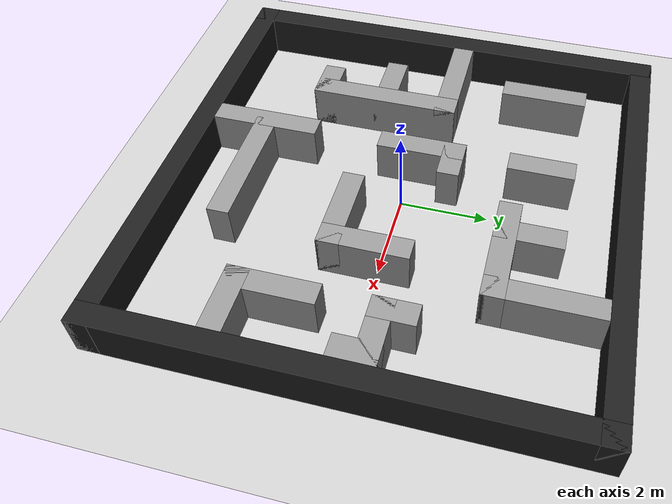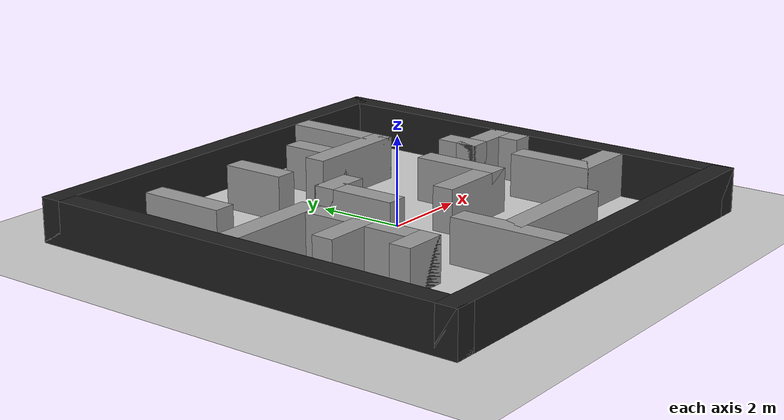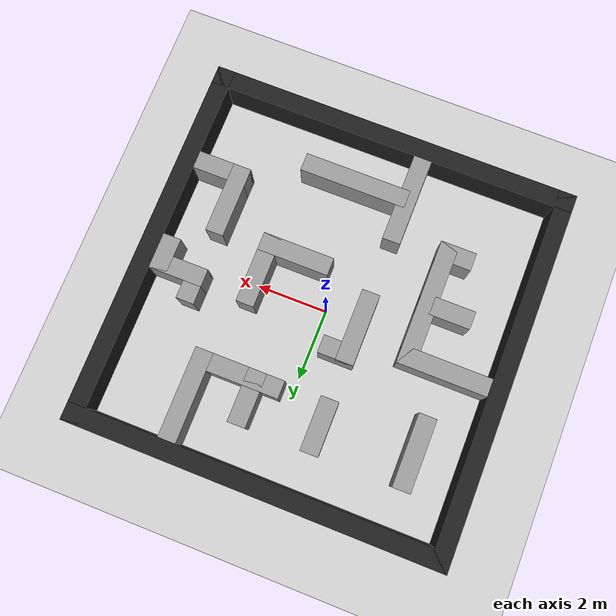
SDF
<sdf version="1.7">
 <world name="default">
  <light name="sun" type="directional">
   <pose>0 0 10 0 -0 0</pose>
   <diffuse>0.8 0.8 0.8 1</diffuse>
   <specular>0.2 0.2 0.2 1</specular>
   <attenuation>
    <range>1000</range>
    <constant>0.9</constant>
    <linear>0.01</linear>
    <quadratic>0.001</quadratic>
   </attenuation>
   <direction>-0.5 0.1 -0.9</direction>
   <spot><inner_angle>0</inner_angle><outer_angle>0</outer_angle><falloff>0</falloff></spot>
  </light>
  <model name="ground_plane">
   <static>1</static>
   <link name="link">
    <collision name="collision">
     <geometry><plane><normal>0 0 1</normal><size>100 100</size></plane></geometry>
     <surface><friction><ode><mu>100</mu><mu2>50</mu2></ode></friction></surface>
    </collision>
    <visual name="visual">
     <cast_shadows>0</cast_shadows>
     <geometry><plane><normal>0 0 1</normal><size>100 100</size></plane></geometry>
     <material>
      <script><uri>file://media/materials/scripts/gazebo.material</uri><name>Gazebo/Grey</name></script>
     </material>
    </visual>
   </link>
  </model>
  <gravity>0 0 -9.8</gravity>
  <magnetic_field>6e-06 2.3e-05 -4.2e-05</magnetic_field>
  <atmosphere type="adiabatic"/>
  <physics type="ode">
   <max_step_size>0.001</max_step_size>
   <real_time_factor>1</real_time_factor>
   <real_time_update_rate>1000</real_time_update_rate>
  </physics>
  <scene><ambient>0.4 0.4 0.4 1</ambient><background>0.7 0.7 0.7 1</background><shadows>1</shadows></scene>
  <audio><device>default</device></audio>
  <spherical_coordinates>
   <surface_model>EARTH_WGS84</surface_model>
   <latitude_deg>0</latitude_deg>
   <longitude_deg>0</longitude_deg>
   <elevation>0</elevation>
   <heading_deg>0</heading_deg>
  </spherical_coordinates>
  <model name="north_wall">
   <static>1</static>
   <pose>5 0 0.5 0 -0 0</pose>
   <link name="link">
    <inertial>
     <mass>1</mass>
     <inertia>
      <ixx>0.166667</ixx>
      <ixy>0</ixy>
      <ixz>0</ixz>
      <iyy>0.166667</iyy>
      <iyz>0</iyz>
      <izz>0.166667</izz>
     </inertia>
    </inertial>
    <collision name="collision"><geometry><box><size>0.5 10.5 1</size></box></geometry></collision>
    <visual name="visual">
     <geometry><box><size>0.5 10.5 1</size></box></geometry>
     <material>
      <script><name>Gazebo/Black</name><uri>file://media/materials/scripts/gazebo.material</uri></script>
     </material>
    </visual>
   </link>
  </model>
  <model name="south_wall">
   <static>1</static>
   <pose>-5 0 0.5 0 -0 0</pose>
   <link name="link">
    <inertial>
     <mass>1</mass>
     <inertia>
      <ixx>0.166667</ixx>
      <ixy>0</ixy>
      <ixz>0</ixz>
      <iyy>0.166667</iyy>
      <iyz>0</iyz>
      <izz>0.166667</izz>
     </inertia>
    </inertial>
    <collision name="collision"><geometry><box><size>0.5 10.5 1</size></box></geometry></collision>
    <visual name="visual">
     <geometry><box><size>0.5 10.5 1</size></box></geometry>
     <material>
      <script><name>Gazebo/Black</name><uri>file://media/materials/scripts/gazebo.material</uri></script>
     </material>
    </visual>
   </link>
  </model>
  <model name="east_wall">
   <static>1</static>
   <pose>0 -5 0.5 0 -0 0</pose>
   <link name="link">
    <inertial>
     <mass>1</mass>
     <inertia>
      <ixx>0.166667</ixx>
      <ixy>0</ixy>
      <ixz>0</ixz>
      <iyy>0.166667</iyy>
      <iyz>0</iyz>
      <izz>0.166667</izz>
     </inertia>
    </inertial>
    <collision name="collision"><geometry><box><size>10.5 0.5 1</size></box></geometry></collision>
    <visual name="visual">
     <geometry><box><size>10.5 0.5 1</size></box></geometry>
     <material>
      <script><name>Gazebo/Black</name><uri>file://media/materials/scripts/gazebo.material</uri></script>
     </material>
    </visual>
   </link>
  </model>
  <model name="west_wall">
   <static>1</static>
   <pose>0 5 0.5 0 -0 0</pose>
   <link name="link">
    <inertial>
     <mass>1</mass>
     <inertia>
      <ixx>0.166667</ixx>
      <ixy>0</ixy>
      <ixz>0</ixz>
      <iyy>0.166667</iyy>
      <iyz>0</iyz>
      <izz>0.166667</izz>
     </inertia>
    </inertial>
    <collision name="collision"><geometry><box><size>10.5 0.5 1</size></box></geometry></collision>
    <visual name="visual">
     <geometry><box><size>10.5 0.5 1</size></box></geometry>
     <material>
      <script><name>Gazebo/Black</name><uri>file://media/materials/scripts/gazebo.material</uri></script>
     </material>
    </visual>
   </link>
  </model>
  <model name="h1">
   <static>1</static>
   <pose>4.5 0.25 0.5 0 -0 0</pose>
   <link name="link">
    <inertial>
     <mass>1</mass>
     <inertia>
      <ixx>0.166667</ixx>
      <ixy>0</ixy>
      <ixz>0</ixz>
      <iyy>0.166667</iyy>
      <iyz>0</iyz>
      <izz>0.166667</izz>
     </inertia>
    </inertial>
    <collision name="collision"><geometry><box><size>0.5 1 1</size></box></geometry></collision>
    <visual name="visual">
     <geometry><box><size>0.5 1 1</size></box></geometry>
     <material>
      <script><name>Gazebo/Grey</name><uri>file://media/materials/scripts/gazebo.material</uri></script>
     </material>
    </visual>
   </link>
  </model>
  <model name="h2">
   <static>1</static>
   <pose>3.5 0.75 0.5 0 -0 0</pose>
   <link name="link">
    <inertial>
     <mass>1</mass>
     <inertia>
      <ixx>0.166667</ixx>
      <ixy>0</ixy>
      <ixz>0</ixz>
      <iyy>0.166667</iyy>
      <iyz>0</iyz>
      <izz>0.166667</izz>
     </inertia>
    </inertial>
    <collision name="collision"><geometry><box><size>0.5 1 1</size></box></geometry></collision>
    <visual name="visual">
     <geometry><box><size>0.5 1 1</size></box></geometry>
     <material>
      <script><name>Gazebo/Grey</name><uri>file://media/materials/scripts/gazebo.material</uri></script>
     </material>
    </visual>
   </link>
  </model>
  <model name="h3">
   <static>1</static>
   <pose>3.5 -1.75 0.5 0 -0 0</pose>
   <link name="link">
    <inertial>
     <mass>1</mass>
     <inertia>
      <ixx>0.166667</ixx>
      <ixy>0</ixy>
      <ixz>0</ixz>
      <iyy>0.166667</iyy>
      <iyz>0</iyz>
      <izz>0.166667</izz>
     </inertia>
    </inertial>
    <collision name="collision"><geometry><box><size>0.5 2 1</size></box></geometry></collision>
    <visual name="visual">
     <geometry><box><size>0.5 2 1</size></box></geometry>
     <material>
      <script><name>Gazebo/Grey</name><uri>file://media/materials/scripts/gazebo.material</uri></script>
     </material>
    </visual>
   </link>
  </model>
  <model name="h4">
   <static>1</static>
   <pose>2.5 3.5 0.5 0 -0 0</pose>
   <link name="link">
    <inertial>
     <mass>1</mass>
     <inertia>
      <ixx>0.166667</ixx>
      <ixy>0</ixy>
      <ixz>0</ixz>
      <iyy>0.166667</iyy>
      <iyz>0</iyz>
      <izz>0.166667</izz>
     </inertia>
    </inertial>
    <collision name="collision"><geometry><box><size>0.5 2.5 1</size></box></geometry></collision>
    <visual name="visual">
     <geometry><box><size>0.5 2.5 1</size></box></geometry>
     <material>
      <script><name>Gazebo/Grey</name><uri>file://media/materials/scripts/gazebo.material</uri></script>
     </material>
    </visual>
   </link>
  </model>
  <model name="h5">
   <static>1</static>
   <pose>2 -0.25 0.5 0 -0 0</pose>
   <link name="link">
    <inertial>
     <mass>1</mass>
     <inertia>
      <ixx>0.166667</ixx>
      <ixy>0</ixy>
      <ixz>0</ixz>
      <iyy>0.166667</iyy>
      <iyz>0</iyz>
      <izz>0.166667</izz>
     </inertia>
    </inertial>
    <collision name="collision"><geometry><box><size>0.5 2 1</size></box></geometry></collision>
    <visual name="visual">
     <geometry><box><size>0.5 2 1</size></box></geometry>
     <material>
      <script><name>Gazebo/Grey</name><uri>file://media/materials/scripts/gazebo.material</uri></script>
     </material>
    </visual>
   </link>
  </model>
  <model name="h6">
   <static>1</static>
   <pose>1 3 0.5 0 -0 0</pose>
   <link name="link">
    <inertial>
     <mass>1</mass>
     <inertia>
      <ixx>0.166667</ixx>
      <ixy>0</ixy>
      <ixz>0</ixz>
      <iyy>0.166667</iyy>
      <iyz>0</iyz>
      <izz>0.166667</izz>
     </inertia>
    </inertial>
    <collision name="collision"><geometry><box><size>0.5 1.5 1</size></box></geometry></collision>
    <visual name="visual">
     <geometry><box><size>0.5 1.5 1</size></box></geometry>
     <material>
      <script><name>Gazebo/Grey</name><uri>file://media/materials/scripts/gazebo.material</uri></script>
     </material>
    </visual>
   </link>
  </model>
  <model name="h7">
   <static>1</static>
   <pose>-1 3 0.5 0 -0 0</pose>
   <link name="link">
    <inertial>
     <mass>1</mass>
     <inertia>
      <ixx>0.166667</ixx>
      <ixy>0</ixy>
      <ixz>0</ixz>
      <iyy>0.166667</iyy>
      <iyz>0</iyz>
      <izz>0.166667</izz>
     </inertia>
    </inertial>
    <collision name="collision"><geometry><box><size>0.5 1.5 1</size></box></geometry></collision>
    <visual name="visual">
     <geometry><box><size>0.5 1.5 1</size></box></geometry>
     <material>
      <script><name>Gazebo/Grey</name><uri>file://media/materials/scripts/gazebo.material</uri></script>
     </material>
    </visual>
   </link>
  </model>
  <model name="h8">
   <static>1</static>
   <pose>-1 0.25 0.5 0 -0 0</pose>
   <link name="link">
    <inertial>
     <mass>1</mass>
     <inertia>
      <ixx>0.166667</ixx>
      <ixy>0</ixy>
      <ixz>0</ixz>
      <iyy>0.166667</iyy>
      <iyz>0</iyz>
      <izz>0.166667</izz>
     </inertia>
    </inertial>
    <collision name="collision"><geometry><box><size>0.5 2 1</size></box></geometry></collision>
    <visual name="visual">
     <geometry><box><size>0.5 2 1</size></box></geometry>
     <material>
      <script><name>Gazebo/Grey</name><uri>file://media/materials/scripts/gazebo.material</uri></script>
     </material>
    </visual>
   </link>
  </model>
  <model name="h9">
   <static>1</static>
   <pose>-1 -3.5 0.5 0 -0 0</pose>
   <link name="link">
    <inertial>
     <mass>1</mass>
     <inertia>
      <ixx>0.166667</ixx>
      <ixy>0</ixy>
      <ixz>0</ixz>
      <iyy>0.166667</iyy>
      <iyz>0</iyz>
      <izz>0.166667</izz>
     </inertia>
    </inertial>
    <collision name="collision"><geometry><box><size>0.5 2.5 1</size></box></geometry></collision>
    <visual name="visual">
     <geometry><box><size>0.5 2.5 1</size></box></geometry>
     <material>
      <script><name>Gazebo/Grey</name><uri>file://media/materials/scripts/gazebo.material</uri></script>
     </material>
    </visual>
   </link>
  </model>
  <model name="h10">
   <static>1</static>
   <pose>-2.5 -1 0.5 0 -0 0</pose>
   <link name="link">
    <inertial>
     <mass>1</mass>
     <inertia>
      <ixx>0.166667</ixx>
      <ixy>0</ixy>
      <ixz>0</ixz>
      <iyy>0.166667</iyy>
      <iyz>0</iyz>
      <izz>0.166667</izz>
     </inertia>
    </inertial>
    <collision name="collision"><geometry><box><size>0.5 3.5 1</size></box></geometry></collision>
    <visual name="visual">
     <geometry><box><size>0.5 3.5 1</size></box></geometry>
     <material>
      <script><name>Gazebo/Grey</name><uri>file://media/materials/scripts/gazebo.material</uri></script>
     </material>
    </visual>
   </link>
  </model>
  <model name="h11">
   <static>1</static>
   <pose>-3.5 2.75 0.5 0 -0 0</pose>
   <link name="link">
    <inertial>
     <mass>1</mass>
     <inertia>
      <ixx>0.166667</ixx>
      <ixy>0</ixy>
      <ixz>0</ixz>
      <iyy>0.166667</iyy>
      <iyz>0</iyz>
      <izz>0.166667</izz>
     </inertia>
    </inertial>
    <collision name="collision"><geometry><box><size>0.5 2 1</size></box></geometry></collision>
    <visual name="visual">
     <geometry><box><size>0.5 2 1</size></box></geometry>
     <material>
      <script><name>Gazebo/Grey</name><uri>file://media/materials/scripts/gazebo.material</uri></script>
     </material>
    </visual>
   </link>
  </model>
  <model name="v12">
   <static>1</static>
   <pose>4 0.5 0.5 0 -0 0</pose>
   <link name="link">
    <inertial>
     <mass>1</mass>
     <inertia>
      <ixx>0.166667</ixx>
      <ixy>0</ixy>
      <ixz>0</ixz>
      <iyy>0.166667</iyy>
      <iyz>0</iyz>
      <izz>0.166667</izz>
     </inertia>
    </inertial>
    <collision name="collision"><geometry><box><size>1.5 0.5 1</size></box></geometry></collision>
    <visual name="visual">
     <geometry><box><size>1.5 0.5 1</size></box></geometry>
     <material>
      <script><name>Gazebo/Grey</name><uri>file://media/materials/scripts/gazebo.material</uri></script>
     </material>
    </visual>
   </link>
  </model>
  <model name="v13">
   <static>1</static>
   <pose>4 -2.5 0.5 0 -0 0</pose>
   <link name="link">
    <inertial>
     <mass>1</mass>
     <inertia>
      <ixx>0.166667</ixx>
      <ixy>0</ixy>
      <ixz>0</ixz>
      <iyy>0.166667</iyy>
      <iyz>0</iyz>
      <izz>0.166667</izz>
     </inertia>
    </inertial>
    <collision name="collision"><geometry><box><size>1.5 0.5 1</size></box></geometry></collision>
    <visual name="visual">
     <geometry><box><size>1.5 0.5 1</size></box></geometry>
     <material>
      <script><name>Gazebo/Grey</name><uri>file://media/materials/scripts/gazebo.material</uri></script>
     </material>
    </visual>
   </link>
  </model>
  <model name="v14">
   <static>1</static>
   <pose>1.5 2.5 0.5 0 -0 0</pose>
   <link name="link">
    <inertial>
     <mass>1</mass>
     <inertia>
      <ixx>0.166667</ixx>
      <ixy>0</ixy>
      <ixz>0</ixz>
      <iyy>0.166667</iyy>
      <iyz>0</iyz>
      <izz>0.166667</izz>
     </inertia>
    </inertial>
    <collision name="collision"><geometry><box><size>2.5 0.5 1</size></box></geometry></collision>
    <visual name="visual">
     <geometry><box><size>2.5 0.5 1</size></box></geometry>
     <material>
      <script><name>Gazebo/Grey</name><uri>file://media/materials/scripts/gazebo.material</uri></script>
     </material>
    </visual>
   </link>
  </model>
  <model name="v15">
   <static>1</static>
   <pose>1.25 -1 0.5 0 -0 0</pose>
   <link name="link">
    <inertial>
     <mass>1</mass>
     <inertia>
      <ixx>0.166667</ixx>
      <ixy>0</ixy>
      <ixz>0</ixz>
      <iyy>0.166667</iyy>
      <iyz>0</iyz>
      <izz>0.166667</izz>
     </inertia>
    </inertial>
    <collision name="collision"><geometry><box><size>2 0.5 1</size></box></geometry></collision>
    <visual name="visual">
     <geometry><box><size>2 0.5 1</size></box></geometry>
     <material>
      <script><name>Gazebo/Grey</name><uri>file://media/materials/scripts/gazebo.material</uri></script>
     </material>
    </visual>
   </link>
  </model>
  <model name="v16">
   <static>1</static>
   <pose>0.5 -3.5 0.5 0 -0 0</pose>
   <link name="link">
    <inertial>
     <mass>1</mass>
     <inertia>
      <ixx>0.166667</ixx>
      <ixy>0</ixy>
      <ixz>0</ixz>
      <iyy>0.166667</iyy>
      <iyz>0</iyz>
      <izz>0.166667</izz>
     </inertia>
    </inertial>
    <collision name="collision"><geometry><box><size>3 0.5 1</size></box></geometry></collision>
    <visual name="visual">
     <geometry><box><size>3 0.5 1</size></box></geometry>
     <material>
      <script><name>Gazebo/Grey</name><uri>file://media/materials/scripts/gazebo.material</uri></script>
     </material>
    </visual>
   </link>
  </model>
  <model name="v17">
   <static>1</static>
   <pose>-0.75 1 0.5 0 -0 0</pose>
   <link name="link">
    <inertial>
     <mass>1</mass>
     <inertia>
      <ixx>0.166667</ixx>
      <ixy>0</ixy>
      <ixz>0</ixz>
      <iyy>0.166667</iyy>
      <iyz>0</iyz>
      <izz>0.166667</izz>
     </inertia>
    </inertial>
    <collision name="collision"><geometry><box><size>1 0.5 1</size></box></geometry></collision>
    <visual name="visual">
     <geometry><box><size>1 0.5 1</size></box></geometry>
     <material>
      <script><name>Gazebo/Grey</name><uri>file://media/materials/scripts/gazebo.material</uri></script>
     </material>
    </visual>
   </link>
  </model>
  <model name="v18">
   <static>1</static>
   <pose>-3.5 0.5 0.5 0 -0 0</pose>
   <link name="link">
    <inertial>
     <mass>1</mass>
     <inertia>
      <ixx>0.166667</ixx>
      <ixy>0</ixy>
      <ixz>0</ixz>
      <iyy>0.166667</iyy>
      <iyz>0</iyz>
      <izz>0.166667</izz>
     </inertia>
    </inertial>
    <collision name="collision"><geometry><box><size>2.5 0.5 1</size></box></geometry></collision>
    <visual name="visual">
     <geometry><box><size>2.5 0.5 1</size></box></geometry>
     <material>
      <script><name>Gazebo/Grey</name><uri>file://media/materials/scripts/gazebo.material</uri></script>
     </material>
    </visual>
   </link>
  </model>
  <model name="v19">
   <static>1</static>
   <pose>-3 -1 0.5 0 -0 0</pose>
   <link name="link">
    <inertial>
     <mass>1</mass>
     <inertia>
      <ixx>0.166667</ixx>
      <ixy>0</ixy>
      <ixz>0</ixz>
      <iyy>0.166667</iyy>
      <iyz>0</iyz>
      <izz>0.166667</izz>
     </inertia>
    </inertial>
    <collision name="collision"><geometry><box><size>1.5 0.5 1</size></box></geometry></collision>
    <visual name="visual">
     <geometry><box><size>1.5 0.5 1</size></box></geometry>
     <material>
      <script><name>Gazebo/Grey</name><uri>file://media/materials/scripts/gazebo.material</uri></script>
     </material>
    </visual>
   </link>
  </model>
  <model name="v20">
   <static>1</static>
   <pose>-2.75 -2.5 0.5 0 -0 0</pose>
   <link name="link">
    <inertial>
     <mass>1</mass>
     <inertia>
      <ixx>0.166667</ixx>
      <ixy>0</ixy>
      <ixz>0</ixz>
      <iyy>0.166667</iyy>
      <iyz>0</iyz>
      <izz>0.166667</izz>
     </inertia>
    </inertial>
    <collision name="collision"><geometry><box><size>1 0.5 1</size></box></geometry></collision>
    <visual name="visual">
     <geometry><box><size>1 0.5 1</size></box></geometry>
     <material>
      <script><name>Gazebo/Grey</name><uri>file://media/materials/scripts/gazebo.material</uri></script>
     </material>
    </visual>
   </link>
  </model>
 </world>
</sdf>
